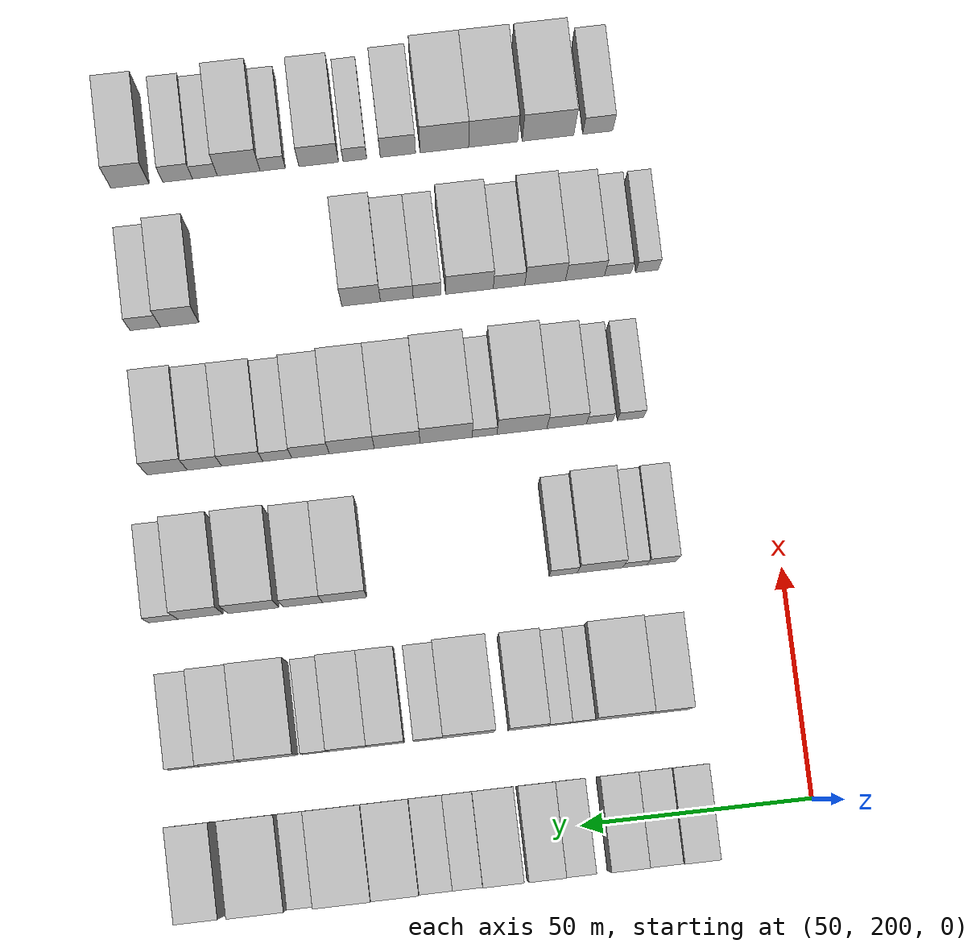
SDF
<sdf version="1.6">
 <world name="default">
  <model name="building_85">
   <static>1</static>
   <pose>50.0000 226.3988 0 0.000000 0.000000 0.000000</pose>
   <link name="link">
    <pose>0 0 9.00 0 0 0</pose>
    <collision name="collision"><geometry><box><size>20.0000 7.6116 18.0000</size></box></geometry></collision>
    <visual name="visual">
     <cast_shadows>0</cast_shadows>
     <geometry><box><size>20.0000 7.6116 18.0000</size></box></geometry>
     <material>
      <script>
       <uri>model://HANNAS_wall/materials/scripts</uri>
       <uri>model://HANNAS_wall/materials/textures</uri>
       <name>vrc/HANNAS_wall</name>
      </script>
     </material>
    </visual>
   </link>
  </model>
  <model name="building_86">
   <static>1</static>
   <pose>50.0000 233.7968 0 0.000000 0.000000 0.000000</pose>
   <link name="link">
    <pose>0 0 7.50 0 0 0</pose>
    <collision name="collision"><geometry><box><size>20.0000 7.1843 15.0000</size></box></geometry></collision>
    <visual name="visual">
     <cast_shadows>0</cast_shadows>
     <geometry><box><size>20.0000 7.1843 15.0000</size></box></geometry>
     <material>
      <script>
       <uri>model://HANNAS_wall/materials/scripts</uri>
       <uri>model://HANNAS_wall/materials/textures</uri>
       <name>vrc/HANNAS_wall</name>
      </script>
     </material>
    </visual>
   </link>
  </model>
  <model name="building_87">
   <static>1</static>
   <pose>50.0000 241.4472 0 0.000000 0.000000 0.000000</pose>
   <link name="link">
    <pose>0 0 9.00 0 0 0</pose>
    <collision name="collision"><geometry><box><size>20.0000 8.1165 18.0000</size></box></geometry></collision>
    <visual name="visual">
     <cast_shadows>0</cast_shadows>
     <geometry><box><size>20.0000 8.1165 18.0000</size></box></geometry>
     <material>
      <script>
       <uri>model://HANNAS_wall/materials/scripts</uri>
       <uri>model://HANNAS_wall/materials/textures</uri>
       <name>vrc/HANNAS_wall</name>
      </script>
     </material>
    </visual>
   </link>
  </model>
  <model name="building_88">
   <static>1</static>
   <pose>50.0000 251.7078 0 0.000000 0.000000 0.000000</pose>
   <link name="link">
    <pose>0 0 7.50 0 0 0</pose>
    <collision name="collision"><geometry><box><size>20.0000 6.4047 15.0000</size></box></geometry></collision>
    <visual name="visual">
     <cast_shadows>0</cast_shadows>
     <geometry><box><size>20.0000 6.4047 15.0000</size></box></geometry>
     <material>
      <script>
       <uri>model://HANNAS_wall/materials/scripts</uri>
       <uri>model://HANNAS_wall/materials/textures</uri>
       <name>vrc/HANNAS_wall</name>
      </script>
     </material>
    </visual>
   </link>
  </model>
  <model name="building_89">
   <static>1</static>
   <pose>50.0000 258.8592 0 0.000000 0.000000 0.000000</pose>
   <link name="link">
    <pose>0 0 9.00 0 0 0</pose>
    <collision name="collision"><geometry><box><size>20.0000 7.8982 18.0000</size></box></geometry></collision>
    <visual name="visual">
     <cast_shadows>0</cast_shadows>
     <geometry><box><size>20.0000 7.8982 18.0000</size></box></geometry>
     <material>
      <script>
       <uri>model://HANNAS_wall/materials/scripts</uri>
       <uri>model://HANNAS_wall/materials/textures</uri>
       <name>vrc/HANNAS_wall</name>
      </script>
     </material>
    </visual>
   </link>
  </model>
  <model name="building_90">
   <static>1</static>
   <pose>50.0000 268.1409 0 0.000000 0.000000 0.000000</pose>
   <link name="link">
    <pose>0 0 9.00 0 0 0</pose>
    <collision name="collision"><geometry><box><size>20.0000 8.6652 18.0000</size></box></geometry></collision>
    <visual name="visual">
     <cast_shadows>0</cast_shadows>
     <geometry><box><size>20.0000 8.6652 18.0000</size></box></geometry>
     <material>
      <script>
       <uri>model://HANNAS_wall/materials/scripts</uri>
       <uri>model://HANNAS_wall/materials/textures</uri>
       <name>vrc/HANNAS_wall</name>
      </script>
     </material>
    </visual>
   </link>
  </model>
  <model name="building_91">
   <static>1</static>
   <pose>50.0000 275.6585 0 0.000000 0.000000 0.000000</pose>
   <link name="link">
    <pose>0 0 7.50 0 0 0</pose>
    <collision name="collision"><geometry><box><size>20.0000 6.3701 15.0000</size></box></geometry></collision>
    <visual name="visual">
     <cast_shadows>0</cast_shadows>
     <geometry><box><size>20.0000 6.3701 15.0000</size></box></geometry>
     <material>
      <script>
       <uri>model://HANNAS_wall/materials/scripts</uri>
       <uri>model://HANNAS_wall/materials/textures</uri>
       <name>vrc/HANNAS_wall</name>
      </script>
     </material>
    </visual>
   </link>
  </model>
  <model name="building_92">
   <static>1</static>
   <pose>50.0000 282.3334 0 0.000000 0.000000 0.000000</pose>
   <link name="link">
    <pose>0 0 7.50 0 0 0</pose>
    <collision name="collision"><geometry><box><size>20.0000 6.9796 15.0000</size></box></geometry></collision>
    <visual name="visual">
     <cast_shadows>0</cast_shadows>
     <geometry><box><size>20.0000 6.9796 15.0000</size></box></geometry>
     <material>
      <script>
       <uri>model://HANNAS_wall/materials/scripts</uri>
       <uri>model://HANNAS_wall/materials/textures</uri>
       <name>vrc/HANNAS_wall</name>
      </script>
     </material>
    </visual>
   </link>
  </model>
  <model name="building_93">
   <static>1</static>
   <pose>50.0000 290.8119 0 0.000000 0.000000 0.000000</pose>
   <link name="link">
    <pose>0 0 10.50 0 0 0</pose>
    <collision name="collision"><geometry><box><size>20.0000 9.9773 21.0000</size></box></geometry></collision>
    <visual name="visual">
     <cast_shadows>0</cast_shadows>
     <geometry><box><size>20.0000 9.9773 21.0000</size></box></geometry>
     <material>
      <script>
       <uri>model://HANNAS_wall/materials/scripts</uri>
       <uri>model://HANNAS_wall/materials/textures</uri>
       <name>vrc/HANNAS_wall</name>
      </script>
     </material>
    </visual>
   </link>
  </model>
  <model name="building_94">
   <static>1</static>
   <pose>50.0000 301.7791 0 0.000000 0.000000 0.000000</pose>
   <link name="link">
    <pose>0 0 12.00 0 0 0</pose>
    <collision name="collision"><geometry><box><size>20.0000 11.9571 24.0000</size></box></geometry></collision>
    <visual name="visual">
     <cast_shadows>0</cast_shadows>
     <geometry><box><size>20.0000 11.9571 24.0000</size></box></geometry>
     <material>
      <script>
       <uri>model://HANNAS_wall/materials/scripts</uri>
       <uri>model://HANNAS_wall/materials/textures</uri>
       <name>vrc/HANNAS_wall</name>
      </script>
     </material>
    </visual>
   </link>
  </model>
  <model name="building_95">
   <static>1</static>
   <pose>50.0000 310.7447 0 0.000000 0.000000 0.000000</pose>
   <link name="link">
    <pose>0 0 6.00 0 0 0</pose>
    <collision name="collision"><geometry><box><size>20.0000 5.9742 12.0000</size></box></geometry></collision>
    <visual name="visual">
     <cast_shadows>0</cast_shadows>
     <geometry><box><size>20.0000 5.9742 12.0000</size></box></geometry>
     <material>
      <script>
       <uri>model://HANNAS_wall/materials/scripts</uri>
       <uri>model://HANNAS_wall/materials/textures</uri>
       <name>vrc/HANNAS_wall</name>
      </script>
     </material>
    </visual>
   </link>
  </model>
  <model name="building_96">
   <static>1</static>
   <pose>50.0000 319.6630 0 0.000000 0.000000 0.000000</pose>
   <link name="link">
    <pose>0 0 12.00 0 0 0</pose>
    <collision name="collision"><geometry><box><size>20.0000 11.8625 24.0000</size></box></geometry></collision>
    <visual name="visual">
     <cast_shadows>0</cast_shadows>
     <geometry><box><size>20.0000 11.8625 24.0000</size></box></geometry>
     <material>
      <script>
       <uri>model://HANNAS_wall/materials/scripts</uri>
       <uri>model://HANNAS_wall/materials/textures</uri>
       <name>vrc/HANNAS_wall</name>
      </script>
     </material>
    </visual>
   </link>
  </model>
  <model name="building_97">
   <static>1</static>
   <pose>50.0000 332.1719 0 0.000000 0.000000 0.000000</pose>
   <link name="link">
    <pose>0 0 10.50 0 0 0</pose>
    <collision name="collision"><geometry><box><size>20.0000 9.1551 21.0000</size></box></geometry></collision>
    <visual name="visual">
     <cast_shadows>0</cast_shadows>
     <geometry><box><size>20.0000 9.1551 21.0000</size></box></geometry>
     <material>
      <script>
       <uri>model://HANNAS_wall/materials/scripts</uri>
       <uri>model://HANNAS_wall/materials/textures</uri>
       <name>vrc/HANNAS_wall</name>
      </script>
     </material>
    </visual>
   </link>
  </model>
  <model name="building_201">
   <static>1</static>
   <pose>82.0000 228.3301 0 0.000000 0.000000 0.000000</pose>
   <link name="link">
    <pose>0 0 9.00 0 0 0</pose>
    <collision name="collision"><geometry><box><size>20.0000 8.7378 18.0000</size></box></geometry></collision>
    <visual name="visual">
     <cast_shadows>0</cast_shadows>
     <geometry><box><size>20.0000 8.7378 18.0000</size></box></geometry>
     <material>
      <script>
       <uri>model://HANNAS_wall/materials/scripts</uri>
       <uri>model://HANNAS_wall/materials/textures</uri>
       <name>vrc/HANNAS_wall</name>
      </script>
     </material>
    </visual>
   </link>
  </model>
  <model name="building_202">
   <static>1</static>
   <pose>82.0000 238.6759 0 0.000000 0.000000 0.000000</pose>
   <link name="link">
    <pose>0 0 12.00 0 0 0</pose>
    <collision name="collision"><geometry><box><size>20.0000 11.9538 24.0000</size></box></geometry></collision>
    <visual name="visual">
     <cast_shadows>0</cast_shadows>
     <geometry><box><size>20.0000 11.9538 24.0000</size></box></geometry>
     <material>
      <script>
       <uri>model://HANNAS_wall/materials/scripts</uri>
       <uri>model://HANNAS_wall/materials/textures</uri>
       <name>vrc/HANNAS_wall</name>
      </script>
     </material>
    </visual>
   </link>
  </model>
  <model name="building_203">
   <static>1</static>
   <pose>82.0000 247.0743 0 0.000000 0.000000 0.000000</pose>
   <link name="link">
    <pose>0 0 6.00 0 0 0</pose>
    <collision name="collision"><geometry><box><size>20.0000 4.8431 12.0000</size></box></geometry></collision>
    <visual name="visual">
     <cast_shadows>0</cast_shadows>
     <geometry><box><size>20.0000 4.8431 12.0000</size></box></geometry>
     <material>
      <script>
       <uri>model://HANNAS_wall/materials/scripts</uri>
       <uri>model://HANNAS_wall/materials/textures</uri>
       <name>vrc/HANNAS_wall</name>
      </script>
     </material>
    </visual>
   </link>
  </model>
  <model name="building_204">
   <static>1</static>
   <pose>82.0000 252.0162 0 0.000000 0.000000 0.000000</pose>
   <link name="link">
    <pose>0 0 6.00 0 0 0</pose>
    <collision name="collision"><geometry><box><size>20.0000 5.0405 12.0000</size></box></geometry></collision>
    <visual name="visual">
     <cast_shadows>0</cast_shadows>
     <geometry><box><size>20.0000 5.0405 12.0000</size></box></geometry>
     <material>
      <script>
       <uri>model://HANNAS_wall/materials/scripts</uri>
       <uri>model://HANNAS_wall/materials/textures</uri>
       <name>vrc/HANNAS_wall</name>
      </script>
     </material>
    </visual>
   </link>
  </model>
  <model name="building_205">
   <static>1</static>
   <pose>82.0000 258.7908 0 0.000000 0.000000 0.000000</pose>
   <link name="link">
    <pose>0 0 10.50 0 0 0</pose>
    <collision name="collision"><geometry><box><size>20.0000 8.5086 21.0000</size></box></geometry></collision>
    <visual name="visual">
     <cast_shadows>0</cast_shadows>
     <geometry><box><size>20.0000 8.5086 21.0000</size></box></geometry>
     <material>
      <script>
       <uri>model://HANNAS_wall/materials/scripts</uri>
       <uri>model://HANNAS_wall/materials/textures</uri>
       <name>vrc/HANNAS_wall</name>
      </script>
     </material>
    </visual>
   </link>
  </model>
  <model name="building_206">
   <static>1</static>
   <pose>82.0000 271.6113 0 0.000000 0.000000 0.000000</pose>
   <link name="link">
    <pose>0 0 12.00 0 0 0</pose>
    <collision name="collision"><geometry><box><size>20.0000 11.1324 24.0000</size></box></geometry></collision>
    <visual name="visual">
     <cast_shadows>0</cast_shadows>
     <geometry><box><size>20.0000 11.1324 24.0000</size></box></geometry>
     <material>
      <script>
       <uri>model://HANNAS_wall/materials/scripts</uri>
       <uri>model://HANNAS_wall/materials/textures</uri>
       <name>vrc/HANNAS_wall</name>
      </script>
     </material>
    </visual>
   </link>
  </model>
  <model name="building_207">
   <static>1</static>
   <pose>82.0000 280.2932 0 0.000000 0.000000 0.000000</pose>
   <link name="link">
    <pose>0 0 7.50 0 0 0</pose>
    <collision name="collision"><geometry><box><size>20.0000 6.2316 15.0000</size></box></geometry></collision>
    <visual name="visual">
     <cast_shadows>0</cast_shadows>
     <geometry><box><size>20.0000 6.2316 15.0000</size></box></geometry>
     <material>
      <script>
       <uri>model://HANNAS_wall/materials/scripts</uri>
       <uri>model://HANNAS_wall/materials/textures</uri>
       <name>vrc/HANNAS_wall</name>
      </script>
     </material>
    </visual>
   </link>
  </model>
  <model name="building_208">
   <static>1</static>
   <pose>82.0000 289.3868 0 0.000000 0.000000 0.000000</pose>
   <link name="link">
    <pose>0 0 9.00 0 0 0</pose>
    <collision name="collision"><geometry><box><size>20.0000 7.9556 18.0000</size></box></geometry></collision>
    <visual name="visual">
     <cast_shadows>0</cast_shadows>
     <geometry><box><size>20.0000 7.9556 18.0000</size></box></geometry>
     <material>
      <script>
       <uri>model://HANNAS_wall/materials/scripts</uri>
       <uri>model://HANNAS_wall/materials/textures</uri>
       <name>vrc/HANNAS_wall</name>
      </script>
     </material>
    </visual>
   </link>
  </model>
  <model name="building_209">
   <static>1</static>
   <pose>82.0000 297.6287 0 0.000000 0.000000 0.000000</pose>
   <link name="link">
    <pose>0 0 9.00 0 0 0</pose>
    <collision name="collision"><geometry><box><size>20.0000 8.5283 18.0000</size></box></geometry></collision>
    <visual name="visual">
     <cast_shadows>0</cast_shadows>
     <geometry><box><size>20.0000 8.5283 18.0000</size></box></geometry>
     <material>
      <script>
       <uri>model://HANNAS_wall/materials/scripts</uri>
       <uri>model://HANNAS_wall/materials/textures</uri>
       <name>vrc/HANNAS_wall</name>
      </script>
     </material>
    </visual>
   </link>
  </model>
  <model name="building_210">
   <static>1</static>
   <pose>82.0000 304.6822 0 0.000000 0.000000 0.000000</pose>
   <link name="link">
    <pose>0 0 6.00 0 0 0</pose>
    <collision name="collision"><geometry><box><size>20.0000 5.5787 12.0000</size></box></geometry></collision>
    <visual name="visual">
     <cast_shadows>0</cast_shadows>
     <geometry><box><size>20.0000 5.5787 12.0000</size></box></geometry>
     <material>
      <script>
       <uri>model://HANNAS_wall/materials/scripts</uri>
       <uri>model://HANNAS_wall/materials/textures</uri>
       <name>vrc/HANNAS_wall</name>
      </script>
     </material>
    </visual>
   </link>
  </model>
  <model name="building_211">
   <static>1</static>
   <pose>82.0000 314.4596 0 0.000000 0.000000 0.000000</pose>
   <link name="link">
    <pose>0 0 12.00 0 0 0</pose>
    <collision name="collision"><geometry><box><size>20.0000 11.9762 24.0000</size></box></geometry></collision>
    <visual name="visual">
     <cast_shadows>0</cast_shadows>
     <geometry><box><size>20.0000 11.9762 24.0000</size></box></geometry>
     <material>
      <script>
       <uri>model://HANNAS_wall/materials/scripts</uri>
       <uri>model://HANNAS_wall/materials/textures</uri>
       <name>vrc/HANNAS_wall</name>
      </script>
     </material>
    </visual>
   </link>
  </model>
  <model name="building_212">
   <static>1</static>
   <pose>82.0000 324.7568 0 0.000000 0.000000 0.000000</pose>
   <link name="link">
    <pose>0 0 10.50 0 0 0</pose>
    <collision name="collision"><geometry><box><size>20.0000 8.6182 21.0000</size></box></geometry></collision>
    <visual name="visual">
     <cast_shadows>0</cast_shadows>
     <geometry><box><size>20.0000 8.6182 21.0000</size></box></geometry>
     <material>
      <script>
       <uri>model://HANNAS_wall/materials/scripts</uri>
       <uri>model://HANNAS_wall/materials/textures</uri>
       <name>vrc/HANNAS_wall</name>
      </script>
     </material>
    </visual>
   </link>
  </model>
  <model name="building_213">
   <static>1</static>
   <pose>82.0000 332.5285 0 0.000000 0.000000 0.000000</pose>
   <link name="link">
    <pose>0 0 7.50 0 0 0</pose>
    <collision name="collision"><geometry><box><size>20.0000 6.9253 15.0000</size></box></geometry></collision>
    <visual name="visual">
     <cast_shadows>0</cast_shadows>
     <geometry><box><size>20.0000 6.9253 15.0000</size></box></geometry>
     <material>
      <script>
       <uri>model://HANNAS_wall/materials/scripts</uri>
       <uri>model://HANNAS_wall/materials/textures</uri>
       <name>vrc/HANNAS_wall</name>
      </script>
     </material>
    </visual>
   </link>
  </model>
  <model name="building_319">
   <static>1</static>
   <pose>114.0000 225.8505 0 0.000000 0.000000 0.000000</pose>
   <link name="link">
    <pose>0 0 7.50 0 0 0</pose>
    <collision name="collision"><geometry><box><size>20.0000 6.3074 15.0000</size></box></geometry></collision>
    <visual name="visual">
     <cast_shadows>0</cast_shadows>
     <geometry><box><size>20.0000 6.3074 15.0000</size></box></geometry>
     <material>
      <script>
       <uri>model://HANNAS_wall/materials/scripts</uri>
       <uri>model://HANNAS_wall/materials/textures</uri>
       <name>vrc/HANNAS_wall</name>
      </script>
     </material>
    </visual>
   </link>
  </model>
  <model name="building_320">
   <static>1</static>
   <pose>114.0000 231.6619 0 0.000000 0.000000 0.000000</pose>
   <link name="link">
    <pose>0 0 6.00 0 0 0</pose>
    <collision name="collision"><geometry><box><size>20.0000 5.3155 12.0000</size></box></geometry></collision>
    <visual name="visual">
     <cast_shadows>0</cast_shadows>
     <geometry><box><size>20.0000 5.3155 12.0000</size></box></geometry>
     <material>
      <script>
       <uri>model://HANNAS_wall/materials/scripts</uri>
       <uri>model://HANNAS_wall/materials/textures</uri>
       <name>vrc/HANNAS_wall</name>
      </script>
     </material>
    </visual>
   </link>
  </model>
  <model name="building_321">
   <static>1</static>
   <pose>114.0000 239.2602 0 0.000000 0.000000 0.000000</pose>
   <link name="link">
    <pose>0 0 10.50 0 0 0</pose>
    <collision name="collision"><geometry><box><size>20.0000 9.8811 21.0000</size></box></geometry></collision>
    <visual name="visual">
     <cast_shadows>0</cast_shadows>
     <geometry><box><size>20.0000 9.8811 21.0000</size></box></geometry>
     <material>
      <script>
       <uri>model://HANNAS_wall/materials/scripts</uri>
       <uri>model://HANNAS_wall/materials/textures</uri>
       <name>vrc/HANNAS_wall</name>
      </script>
     </material>
    </visual>
   </link>
  </model>
  <model name="building_322">
   <static>1</static>
   <pose>114.0000 247.2539 0 0.000000 0.000000 0.000000</pose>
   <link name="link">
    <pose>0 0 7.50 0 0 0</pose>
    <collision name="collision"><geometry><box><size>20.0000 6.1063 15.0000</size></box></geometry></collision>
    <visual name="visual">
     <cast_shadows>0</cast_shadows>
     <geometry><box><size>20.0000 6.1063 15.0000</size></box></geometry>
     <material>
      <script>
       <uri>model://HANNAS_wall/materials/scripts</uri>
       <uri>model://HANNAS_wall/materials/textures</uri>
       <name>vrc/HANNAS_wall</name>
      </script>
     </material>
    </visual>
   </link>
  </model>
  <model name="building_323">
   <static>1</static>
   <pose>114.0000 294.7930 0 0.000000 0.000000 0.000000</pose>
   <link name="link">
    <pose>0 0 10.50 0 0 0</pose>
    <collision name="collision"><geometry><box><size>20.0000 9.6573 21.0000</size></box></geometry></collision>
    <visual name="visual">
     <cast_shadows>0</cast_shadows>
     <geometry><box><size>20.0000 9.6573 21.0000</size></box></geometry>
     <material>
      <script>
       <uri>model://HANNAS_wall/materials/scripts</uri>
       <uri>model://HANNAS_wall/materials/textures</uri>
       <name>vrc/HANNAS_wall</name>
      </script>
     </material>
    </visual>
   </link>
  </model>
  <model name="building_324">
   <static>1</static>
   <pose>114.0000 303.8495 0 0.000000 0.000000 0.000000</pose>
   <link name="link">
    <pose>0 0 10.50 0 0 0</pose>
    <collision name="collision"><geometry><box><size>20.0000 8.4556 21.0000</size></box></geometry></collision>
    <visual name="visual">
     <cast_shadows>0</cast_shadows>
     <geometry><box><size>20.0000 8.4556 21.0000</size></box></geometry>
     <material>
      <script>
       <uri>model://HANNAS_wall/materials/scripts</uri>
       <uri>model://HANNAS_wall/materials/textures</uri>
       <name>vrc/HANNAS_wall</name>
      </script>
     </material>
    </visual>
   </link>
  </model>
  <model name="building_325">
   <static>1</static>
   <pose>114.0000 314.5957 0 0.000000 0.000000 0.000000</pose>
   <link name="link">
    <pose>0 0 12.00 0 0 0</pose>
    <collision name="collision"><geometry><box><size>20.0000 11.0368 24.0000</size></box></geometry></collision>
    <visual name="visual">
     <cast_shadows>0</cast_shadows>
     <geometry><box><size>20.0000 11.0368 24.0000</size></box></geometry>
     <material>
      <script>
       <uri>model://HANNAS_wall/materials/scripts</uri>
       <uri>model://HANNAS_wall/materials/textures</uri>
       <name>vrc/HANNAS_wall</name>
      </script>
     </material>
    </visual>
   </link>
  </model>
  <model name="building_326">
   <static>1</static>
   <pose>114.0000 326.0355 0 0.000000 0.000000 0.000000</pose>
   <link name="link">
    <pose>0 0 12.00 0 0 0</pose>
    <collision name="collision"><geometry><box><size>20.0000 9.8428 24.0000</size></box></geometry></collision>
    <visual name="visual">
     <cast_shadows>0</cast_shadows>
     <geometry><box><size>20.0000 9.8428 24.0000</size></box></geometry>
     <material>
      <script>
       <uri>model://HANNAS_wall/materials/scripts</uri>
       <uri>model://HANNAS_wall/materials/textures</uri>
       <name>vrc/HANNAS_wall</name>
      </script>
     </material>
    </visual>
   </link>
  </model>
  <model name="building_327">
   <static>1</static>
   <pose>114.0000 334.1635 0 0.000000 0.000000 0.000000</pose>
   <link name="link">
    <pose>0 0 7.50 0 0 0</pose>
    <collision name="collision"><geometry><box><size>20.0000 6.4133 15.0000</size></box></geometry></collision>
    <visual name="visual">
     <cast_shadows>0</cast_shadows>
     <geometry><box><size>20.0000 6.4133 15.0000</size></box></geometry>
     <material>
      <script>
       <uri>model://HANNAS_wall/materials/scripts</uri>
       <uri>model://HANNAS_wall/materials/textures</uri>
       <name>vrc/HANNAS_wall</name>
      </script>
     </material>
    </visual>
   </link>
  </model>
  <model name="building_437">
   <static>1</static>
   <pose>146.0000 228.6499 0 0.000000 0.000000 0.000000</pose>
   <link name="link">
    <pose>0 0 6.00 0 0 0</pose>
    <collision name="collision"><geometry><box><size>20.0000 5.7429 12.0000</size></box></geometry></collision>
    <visual name="visual">
     <cast_shadows>0</cast_shadows>
     <geometry><box><size>20.0000 5.7429 12.0000</size></box></geometry>
     <material>
      <script>
       <uri>model://HANNAS_wall/materials/scripts</uri>
       <uri>model://HANNAS_wall/materials/textures</uri>
       <name>vrc/HANNAS_wall</name>
      </script>
     </material>
    </visual>
   </link>
  </model>
  <model name="building_438">
   <static>1</static>
   <pose>146.0000 235.4104 0 0.000000 0.000000 0.000000</pose>
   <link name="link">
    <pose>0 0 6.00 0 0 0</pose>
    <collision name="collision"><geometry><box><size>20.0000 5.7780 12.0000</size></box></geometry></collision>
    <visual name="visual">
     <cast_shadows>0</cast_shadows>
     <geometry><box><size>20.0000 5.7780 12.0000</size></box></geometry>
     <material>
      <script>
       <uri>model://HANNAS_wall/materials/scripts</uri>
       <uri>model://HANNAS_wall/materials/textures</uri>
       <name>vrc/HANNAS_wall</name>
      </script>
     </material>
    </visual>
   </link>
  </model>
  <model name="building_439">
   <static>1</static>
   <pose>146.0000 242.6281 0 0.000000 0.000000 0.000000</pose>
   <link name="link">
    <pose>0 0 9.00 0 0 0</pose>
    <collision name="collision"><geometry><box><size>20.0000 8.6575 18.0000</size></box></geometry></collision>
    <visual name="visual">
     <cast_shadows>0</cast_shadows>
     <geometry><box><size>20.0000 8.6575 18.0000</size></box></geometry>
     <material>
      <script>
       <uri>model://HANNAS_wall/materials/scripts</uri>
       <uri>model://HANNAS_wall/materials/textures</uri>
       <name>vrc/HANNAS_wall</name>
      </script>
     </material>
    </visual>
   </link>
  </model>
  <model name="building_440">
   <static>1</static>
   <pose>146.0000 252.4223 0 0.000000 0.000000 0.000000</pose>
   <link name="link">
    <pose>0 0 12.00 0 0 0</pose>
    <collision name="collision"><geometry><box><size>20.0000 10.9309 24.0000</size></box></geometry></collision>
    <visual name="visual">
     <cast_shadows>0</cast_shadows>
     <geometry><box><size>20.0000 10.9309 24.0000</size></box></geometry>
     <material>
      <script>
       <uri>model://HANNAS_wall/materials/scripts</uri>
       <uri>model://HANNAS_wall/materials/textures</uri>
       <name>vrc/HANNAS_wall</name>
      </script>
     </material>
    </visual>
   </link>
  </model>
  <model name="building_441">
   <static>1</static>
   <pose>146.0000 260.5908 0 0.000000 0.000000 0.000000</pose>
   <link name="link">
    <pose>0 0 6.00 0 0 0</pose>
    <collision name="collision"><geometry><box><size>20.0000 5.4063 12.0000</size></box></geometry></collision>
    <visual name="visual">
     <cast_shadows>0</cast_shadows>
     <geometry><box><size>20.0000 5.4063 12.0000</size></box></geometry>
     <material>
      <script>
       <uri>model://HANNAS_wall/materials/scripts</uri>
       <uri>model://HANNAS_wall/materials/textures</uri>
       <name>vrc/HANNAS_wall</name>
      </script>
     </material>
    </visual>
   </link>
  </model>
  <model name="building_442">
   <static>1</static>
   <pose>146.0000 269.0041 0 0.000000 0.000000 0.000000</pose>
   <link name="link">
    <pose>0 0 12.00 0 0 0</pose>
    <collision name="collision"><geometry><box><size>20.0000 11.4202 24.0000</size></box></geometry></collision>
    <visual name="visual">
     <cast_shadows>0</cast_shadows>
     <geometry><box><size>20.0000 11.4202 24.0000</size></box></geometry>
     <material>
      <script>
       <uri>model://HANNAS_wall/materials/scripts</uri>
       <uri>model://HANNAS_wall/materials/textures</uri>
       <name>vrc/HANNAS_wall</name>
      </script>
     </material>
    </visual>
   </link>
  </model>
  <model name="building_443">
   <static>1</static>
   <pose>146.0000 279.7028 0 0.000000 0.000000 0.000000</pose>
   <link name="link">
    <pose>0 0 10.50 0 0 0</pose>
    <collision name="collision"><geometry><box><size>20.0000 9.9772 21.0000</size></box></geometry></collision>
    <visual name="visual">
     <cast_shadows>0</cast_shadows>
     <geometry><box><size>20.0000 9.9772 21.0000</size></box></geometry>
     <material>
      <script>
       <uri>model://HANNAS_wall/materials/scripts</uri>
       <uri>model://HANNAS_wall/materials/textures</uri>
       <name>vrc/HANNAS_wall</name>
      </script>
     </material>
    </visual>
   </link>
  </model>
  <model name="building_444">
   <static>1</static>
   <pose>146.0000 289.6208 0 0.000000 0.000000 0.000000</pose>
   <link name="link">
    <pose>0 0 10.50 0 0 0</pose>
    <collision name="collision"><geometry><box><size>20.0000 9.8587 21.0000</size></box></geometry></collision>
    <visual name="visual">
     <cast_shadows>0</cast_shadows>
     <geometry><box><size>20.0000 9.8587 21.0000</size></box></geometry>
     <material>
      <script>
       <uri>model://HANNAS_wall/materials/scripts</uri>
       <uri>model://HANNAS_wall/materials/textures</uri>
       <name>vrc/HANNAS_wall</name>
      </script>
     </material>
    </visual>
   </link>
  </model>
  <model name="building_445">
   <static>1</static>
   <pose>146.0000 298.6566 0 0.000000 0.000000 0.000000</pose>
   <link name="link">
    <pose>0 0 9.00 0 0 0</pose>
    <collision name="collision"><geometry><box><size>20.0000 8.2128 18.0000</size></box></geometry></collision>
    <visual name="visual">
     <cast_shadows>0</cast_shadows>
     <geometry><box><size>20.0000 8.2128 18.0000</size></box></geometry>
     <material>
      <script>
       <uri>model://HANNAS_wall/materials/scripts</uri>
       <uri>model://HANNAS_wall/materials/textures</uri>
       <name>vrc/HANNAS_wall</name>
      </script>
     </material>
    </visual>
   </link>
  </model>
  <model name="building_446">
   <static>1</static>
   <pose>146.0000 305.9157 0 0.000000 0.000000 0.000000</pose>
   <link name="link">
    <pose>0 0 7.50 0 0 0</pose>
    <collision name="collision"><geometry><box><size>20.0000 6.3055 15.0000</size></box></geometry></collision>
    <visual name="visual">
     <cast_shadows>0</cast_shadows>
     <geometry><box><size>20.0000 6.3055 15.0000</size></box></geometry>
     <material>
      <script>
       <uri>model://HANNAS_wall/materials/scripts</uri>
       <uri>model://HANNAS_wall/materials/textures</uri>
       <name>vrc/HANNAS_wall</name>
      </script>
     </material>
    </visual>
   </link>
  </model>
  <model name="building_447">
   <static>1</static>
   <pose>146.0000 313.5553 0 0.000000 0.000000 0.000000</pose>
   <link name="link">
    <pose>0 0 9.00 0 0 0</pose>
    <collision name="collision"><geometry><box><size>20.0000 8.9738 18.0000</size></box></geometry></collision>
    <visual name="visual">
     <cast_shadows>0</cast_shadows>
     <geometry><box><size>20.0000 8.9738 18.0000</size></box></geometry>
     <material>
      <script>
       <uri>model://HANNAS_wall/materials/scripts</uri>
       <uri>model://HANNAS_wall/materials/textures</uri>
       <name>vrc/HANNAS_wall</name>
      </script>
     </material>
    </visual>
   </link>
  </model>
  <model name="building_448">
   <static>1</static>
   <pose>146.0000 321.8104 0 0.000000 0.000000 0.000000</pose>
   <link name="link">
    <pose>0 0 9.00 0 0 0</pose>
    <collision name="collision"><geometry><box><size>20.0000 7.5363 18.0000</size></box></geometry></collision>
    <visual name="visual">
     <cast_shadows>0</cast_shadows>
     <geometry><box><size>20.0000 7.5363 18.0000</size></box></geometry>
     <material>
      <script>
       <uri>model://HANNAS_wall/materials/scripts</uri>
       <uri>model://HANNAS_wall/materials/textures</uri>
       <name>vrc/HANNAS_wall</name>
      </script>
     </material>
    </visual>
   </link>
  </model>
  <model name="building_449">
   <static>1</static>
   <pose>146.0000 329.9399 0 0.000000 0.000000 0.000000</pose>
   <link name="link">
    <pose>0 0 10.50 0 0 0</pose>
    <collision name="collision"><geometry><box><size>20.0000 8.7228 21.0000</size></box></geometry></collision>
    <visual name="visual">
     <cast_shadows>0</cast_shadows>
     <geometry><box><size>20.0000 8.7228 21.0000</size></box></geometry>
     <material>
      <script>
       <uri>model://HANNAS_wall/materials/scripts</uri>
       <uri>model://HANNAS_wall/materials/textures</uri>
       <name>vrc/HANNAS_wall</name>
      </script>
     </material>
    </visual>
   </link>
  </model>
  <model name="building_556">
   <static>1</static>
   <pose>178.0000 221.0325 0 0.000000 0.000000 0.000000</pose>
   <link name="link">
    <pose>0 0 6.00 0 0 0</pose>
    <collision name="collision"><geometry><box><size>20.0000 4.9922 12.0000</size></box></geometry></collision>
    <visual name="visual">
     <cast_shadows>0</cast_shadows>
     <geometry><box><size>20.0000 4.9922 12.0000</size></box></geometry>
     <material>
      <script>
       <uri>model://HANNAS_wall/materials/scripts</uri>
       <uri>model://HANNAS_wall/materials/textures</uri>
       <name>vrc/HANNAS_wall</name>
      </script>
     </material>
    </visual>
   </link>
  </model>
  <model name="building_557">
   <static>1</static>
   <pose>178.0000 227.4751 0 0.000000 0.000000 0.000000</pose>
   <link name="link">
    <pose>0 0 6.00 0 0 0</pose>
    <collision name="collision"><geometry><box><size>20.0000 5.8928 12.0000</size></box></geometry></collision>
    <visual name="visual">
     <cast_shadows>0</cast_shadows>
     <geometry><box><size>20.0000 5.8928 12.0000</size></box></geometry>
     <material>
      <script>
       <uri>model://HANNAS_wall/materials/scripts</uri>
       <uri>model://HANNAS_wall/materials/textures</uri>
       <name>vrc/HANNAS_wall</name>
      </script>
     </material>
    </visual>
   </link>
  </model>
  <model name="building_558">
   <static>1</static>
   <pose>178.0000 234.7134 0 0.000000 0.000000 0.000000</pose>
   <link name="link">
    <pose>0 0 9.00 0 0 0</pose>
    <collision name="collision"><geometry><box><size>20.0000 8.5838 18.0000</size></box></geometry></collision>
    <visual name="visual">
     <cast_shadows>0</cast_shadows>
     <geometry><box><size>20.0000 8.5838 18.0000</size></box></geometry>
     <material>
      <script>
       <uri>model://HANNAS_wall/materials/scripts</uri>
       <uri>model://HANNAS_wall/materials/textures</uri>
       <name>vrc/HANNAS_wall</name>
      </script>
     </material>
    </visual>
   </link>
  </model>
  <model name="building_559">
   <static>1</static>
   <pose>178.0000 243.4857 0 0.000000 0.000000 0.000000</pose>
   <link name="link">
    <pose>0 0 10.50 0 0 0</pose>
    <collision name="collision"><geometry><box><size>20.0000 8.9609 21.0000</size></box></geometry></collision>
    <visual name="visual">
     <cast_shadows>0</cast_shadows>
     <geometry><box><size>20.0000 8.9609 21.0000</size></box></geometry>
     <material>
      <script>
       <uri>model://HANNAS_wall/materials/scripts</uri>
       <uri>model://HANNAS_wall/materials/textures</uri>
       <name>vrc/HANNAS_wall</name>
      </script>
     </material>
    </visual>
   </link>
  </model>
  <model name="building_560">
   <static>1</static>
   <pose>178.0000 251.4385 0 0.000000 0.000000 0.000000</pose>
   <link name="link">
    <pose>0 0 7.50 0 0 0</pose>
    <collision name="collision"><geometry><box><size>20.0000 6.9448 15.0000</size></box></geometry></collision>
    <visual name="visual">
     <cast_shadows>0</cast_shadows>
     <geometry><box><size>20.0000 6.9448 15.0000</size></box></geometry>
     <material>
      <script>
       <uri>model://HANNAS_wall/materials/scripts</uri>
       <uri>model://HANNAS_wall/materials/textures</uri>
       <name>vrc/HANNAS_wall</name>
      </script>
     </material>
    </visual>
   </link>
  </model>
  <model name="building_561">
   <static>1</static>
   <pose>178.0000 260.1531 0 0.000000 0.000000 0.000000</pose>
   <link name="link">
    <pose>0 0 10.50 0 0 0</pose>
    <collision name="collision"><geometry><box><size>20.0000 10.4845 21.0000</size></box></geometry></collision>
    <visual name="visual">
     <cast_shadows>0</cast_shadows>
     <geometry><box><size>20.0000 10.4845 21.0000</size></box></geometry>
     <material>
      <script>
       <uri>model://HANNAS_wall/materials/scripts</uri>
       <uri>model://HANNAS_wall/materials/textures</uri>
       <name>vrc/HANNAS_wall</name>
      </script>
     </material>
    </visual>
   </link>
  </model>
  <model name="building_562">
   <static>1</static>
   <pose>178.0000 269.4670 0 0.000000 0.000000 0.000000</pose>
   <link name="link">
    <pose>0 0 7.50 0 0 0</pose>
    <collision name="collision"><geometry><box><size>20.0000 6.1433 15.0000</size></box></geometry></collision>
    <visual name="visual">
     <cast_shadows>0</cast_shadows>
     <geometry><box><size>20.0000 6.1433 15.0000</size></box></geometry>
     <material>
      <script>
       <uri>model://HANNAS_wall/materials/scripts</uri>
       <uri>model://HANNAS_wall/materials/textures</uri>
       <name>vrc/HANNAS_wall</name>
      </script>
     </material>
    </visual>
   </link>
  </model>
  <model name="building_563">
   <static>1</static>
   <pose>178.0000 276.1387 0 0.000000 0.000000 0.000000</pose>
   <link name="link">
    <pose>0 0 7.50 0 0 0</pose>
    <collision name="collision"><geometry><box><size>20.0000 7.2001 15.0000</size></box></geometry></collision>
    <visual name="visual">
     <cast_shadows>0</cast_shadows>
     <geometry><box><size>20.0000 7.2001 15.0000</size></box></geometry>
     <material>
      <script>
       <uri>model://HANNAS_wall/materials/scripts</uri>
       <uri>model://HANNAS_wall/materials/textures</uri>
       <name>vrc/HANNAS_wall</name>
      </script>
     </material>
    </visual>
   </link>
  </model>
  <model name="building_564">
   <static>1</static>
   <pose>178.0000 283.9947 0 0.000000 0.000000 0.000000</pose>
   <link name="link">
    <pose>0 0 10.50 0 0 0</pose>
    <collision name="collision"><geometry><box><size>20.0000 8.5118 21.0000</size></box></geometry></collision>
    <visual name="visual">
     <cast_shadows>0</cast_shadows>
     <geometry><box><size>20.0000 8.5118 21.0000</size></box></geometry>
     <material>
      <script>
       <uri>model://HANNAS_wall/materials/scripts</uri>
       <uri>model://HANNAS_wall/materials/textures</uri>
       <name>vrc/HANNAS_wall</name>
      </script>
     </material>
    </visual>
   </link>
  </model>
  <model name="building_565">
   <static>1</static>
   <pose>178.0000 323.8800 0 0.000000 0.000000 0.000000</pose>
   <link name="link">
    <pose>0 0 10.50 0 0 0</pose>
    <collision name="collision"><geometry><box><size>20.0000 8.4196 21.0000</size></box></geometry></collision>
    <visual name="visual">
     <cast_shadows>0</cast_shadows>
     <geometry><box><size>20.0000 8.4196 21.0000</size></box></geometry>
     <material>
      <script>
       <uri>model://HANNAS_wall/materials/scripts</uri>
       <uri>model://HANNAS_wall/materials/textures</uri>
       <name>vrc/HANNAS_wall</name>
      </script>
     </material>
    </visual>
   </link>
  </model>
  <model name="building_566">
   <static>1</static>
   <pose>178.0000 331.4400 0 0.000000 0.000000 0.000000</pose>
   <link name="link">
    <pose>0 0 7.50 0 0 0</pose>
    <collision name="collision"><geometry><box><size>20.0000 6.7004 15.0000</size></box></geometry></collision>
    <visual name="visual">
     <cast_shadows>0</cast_shadows>
     <geometry><box><size>20.0000 6.7004 15.0000</size></box></geometry>
     <material>
      <script>
       <uri>model://HANNAS_wall/materials/scripts</uri>
       <uri>model://HANNAS_wall/materials/textures</uri>
       <name>vrc/HANNAS_wall</name>
      </script>
     </material>
    </visual>
   </link>
  </model>
  <model name="building_676">
   <static>1</static>
   <pose>210.0000 227.9609 0 0.000000 0.000000 0.000000</pose>
   <link name="link">
    <pose>0 0 7.50 0 0 0</pose>
    <collision name="collision"><geometry><box><size>20.0000 6.6523 15.0000</size></box></geometry></collision>
    <visual name="visual">
     <cast_shadows>0</cast_shadows>
     <geometry><box><size>20.0000 6.6523 15.0000</size></box></geometry>
     <material>
      <script>
       <uri>model://HANNAS_wall/materials/scripts</uri>
       <uri>model://HANNAS_wall/materials/textures</uri>
       <name>vrc/HANNAS_wall</name>
      </script>
     </material>
    </visual>
   </link>
  </model>
  <model name="building_677">
   <static>1</static>
   <pose>210.0000 239.0057 0 0.000000 0.000000 0.000000</pose>
   <link name="link">
    <pose>0 0 12.00 0 0 0</pose>
    <collision name="collision"><geometry><box><size>20.0000 11.4374 24.0000</size></box></geometry></collision>
    <visual name="visual">
     <cast_shadows>0</cast_shadows>
     <geometry><box><size>20.0000 11.4374 24.0000</size></box></geometry>
     <material>
      <script>
       <uri>model://HANNAS_wall/materials/scripts</uri>
       <uri>model://HANNAS_wall/materials/textures</uri>
       <name>vrc/HANNAS_wall</name>
      </script>
     </material>
    </visual>
   </link>
  </model>
  <model name="building_678">
   <static>1</static>
   <pose>210.0000 251.1576 0 0.000000 0.000000 0.000000</pose>
   <link name="link">
    <pose>0 0 12.00 0 0 0</pose>
    <collision name="collision"><geometry><box><size>20.0000 10.8664 24.0000</size></box></geometry></collision>
    <visual name="visual">
     <cast_shadows>0</cast_shadows>
     <geometry><box><size>20.0000 10.8664 24.0000</size></box></geometry>
     <material>
      <script>
       <uri>model://HANNAS_wall/materials/scripts</uri>
       <uri>model://HANNAS_wall/materials/textures</uri>
       <name>vrc/HANNAS_wall</name>
      </script>
     </material>
    </visual>
   </link>
  </model>
  <model name="building_679">
   <static>1</static>
   <pose>210.0000 261.9651 0 0.000000 0.000000 0.000000</pose>
   <link name="link">
    <pose>0 0 12.00 0 0 0</pose>
    <collision name="collision"><geometry><box><size>20.0000 10.7485 24.0000</size></box></geometry></collision>
    <visual name="visual">
     <cast_shadows>0</cast_shadows>
     <geometry><box><size>20.0000 10.7485 24.0000</size></box></geometry>
     <material>
      <script>
       <uri>model://HANNAS_wall/materials/scripts</uri>
       <uri>model://HANNAS_wall/materials/textures</uri>
       <name>vrc/HANNAS_wall</name>
      </script>
     </material>
    </visual>
   </link>
  </model>
  <model name="building_680">
   <static>1</static>
   <pose>210.0000 272.2472 0 0.000000 0.000000 0.000000</pose>
   <link name="link">
    <pose>0 0 9.00 0 0 0</pose>
    <collision name="collision"><geometry><box><size>20.0000 7.8157 18.0000</size></box></geometry></collision>
    <visual name="visual">
     <cast_shadows>0</cast_shadows>
     <geometry><box><size>20.0000 7.8157 18.0000</size></box></geometry>
     <material>
      <script>
       <uri>model://HANNAS_wall/materials/scripts</uri>
       <uri>model://HANNAS_wall/materials/textures</uri>
       <name>vrc/HANNAS_wall</name>
      </script>
     </material>
    </visual>
   </link>
  </model>
  <model name="building_681">
   <static>1</static>
   <pose>210.0000 281.7693 0 0.000000 0.000000 0.000000</pose>
   <link name="link">
    <pose>0 0 6.00 0 0 0</pose>
    <collision name="collision"><geometry><box><size>20.0000 5.2283 12.0000</size></box></geometry></collision>
    <visual name="visual">
     <cast_shadows>0</cast_shadows>
     <geometry><box><size>20.0000 5.2283 12.0000</size></box></geometry>
     <material>
      <script>
       <uri>model://HANNAS_wall/materials/scripts</uri>
       <uri>model://HANNAS_wall/materials/textures</uri>
       <name>vrc/HANNAS_wall</name>
      </script>
     </material>
    </visual>
   </link>
  </model>
  <model name="building_682">
   <static>1</static>
   <pose>210.0000 289.7790 0 0.000000 0.000000 0.000000</pose>
   <link name="link">
    <pose>0 0 9.00 0 0 0</pose>
    <collision name="collision"><geometry><box><size>20.0000 8.7913 18.0000</size></box></geometry></collision>
    <visual name="visual">
     <cast_shadows>0</cast_shadows>
     <geometry><box><size>20.0000 8.7913 18.0000</size></box></geometry>
     <material>
      <script>
       <uri>model://HANNAS_wall/materials/scripts</uri>
       <uri>model://HANNAS_wall/materials/textures</uri>
       <name>vrc/HANNAS_wall</name>
      </script>
     </material>
    </visual>
   </link>
  </model>
  <model name="building_683">
   <static>1</static>
   <pose>210.0000 299.9668 0 0.000000 0.000000 0.000000</pose>
   <link name="link">
    <pose>0 0 6.00 0 0 0</pose>
    <collision name="collision"><geometry><box><size>20.0000 5.5841 12.0000</size></box></geometry></collision>
    <visual name="visual">
     <cast_shadows>0</cast_shadows>
     <geometry><box><size>20.0000 5.5841 12.0000</size></box></geometry>
     <material>
      <script>
       <uri>model://HANNAS_wall/materials/scripts</uri>
       <uri>model://HANNAS_wall/materials/textures</uri>
       <name>vrc/HANNAS_wall</name>
      </script>
     </material>
    </visual>
   </link>
  </model>
  <model name="building_684">
   <static>1</static>
   <pose>210.0000 307.4813 0 0.000000 0.000000 0.000000</pose>
   <link name="link">
    <pose>0 0 10.50 0 0 0</pose>
    <collision name="collision"><geometry><box><size>20.0000 9.4448 21.0000</size></box></geometry></collision>
    <visual name="visual">
     <cast_shadows>0</cast_shadows>
     <geometry><box><size>20.0000 9.4448 21.0000</size></box></geometry>
     <material>
      <script>
       <uri>model://HANNAS_wall/materials/scripts</uri>
       <uri>model://HANNAS_wall/materials/textures</uri>
       <name>vrc/HANNAS_wall</name>
      </script>
     </material>
    </visual>
   </link>
  </model>
  <model name="building_685">
   <static>1</static>
   <pose>210.0000 314.9630 0 0.000000 0.000000 0.000000</pose>
   <link name="link">
    <pose>0 0 6.00 0 0 0</pose>
    <collision name="collision"><geometry><box><size>20.0000 5.5186 12.0000</size></box></geometry></collision>
    <visual name="visual">
     <cast_shadows>0</cast_shadows>
     <geometry><box><size>20.0000 5.5186 12.0000</size></box></geometry>
     <material>
      <script>
       <uri>model://HANNAS_wall/materials/scripts</uri>
       <uri>model://HANNAS_wall/materials/textures</uri>
       <name>vrc/HANNAS_wall</name>
      </script>
     </material>
    </visual>
   </link>
  </model>
  <model name="building_686">
   <static>1</static>
   <pose>210.0000 320.9965 0 0.000000 0.000000 0.000000</pose>
   <link name="link">
    <pose>0 0 7.50 0 0 0</pose>
    <collision name="collision"><geometry><box><size>20.0000 6.5484 15.0000</size></box></geometry></collision>
    <visual name="visual">
     <cast_shadows>0</cast_shadows>
     <geometry><box><size>20.0000 6.5484 15.0000</size></box></geometry>
     <material>
      <script>
       <uri>model://HANNAS_wall/materials/scripts</uri>
       <uri>model://HANNAS_wall/materials/textures</uri>
       <name>vrc/HANNAS_wall</name>
      </script>
     </material>
    </visual>
   </link>
  </model>
  <model name="building_687">
   <static>1</static>
   <pose>210.0000 331.4985 0 0.000000 0.000000 0.000000</pose>
   <link name="link">
    <pose>0 0 10.50 0 0 0</pose>
    <collision name="collision"><geometry><box><size>20.0000 8.4555 21.0000</size></box></geometry></collision>
    <visual name="visual">
     <cast_shadows>0</cast_shadows>
     <geometry><box><size>20.0000 8.4555 21.0000</size></box></geometry>
     <material>
      <script>
       <uri>model://HANNAS_wall/materials/scripts</uri>
       <uri>model://HANNAS_wall/materials/textures</uri>
       <name>vrc/HANNAS_wall</name>
      </script>
     </material>
    </visual>
   </link>
  </model>
 </world>
</sdf>
